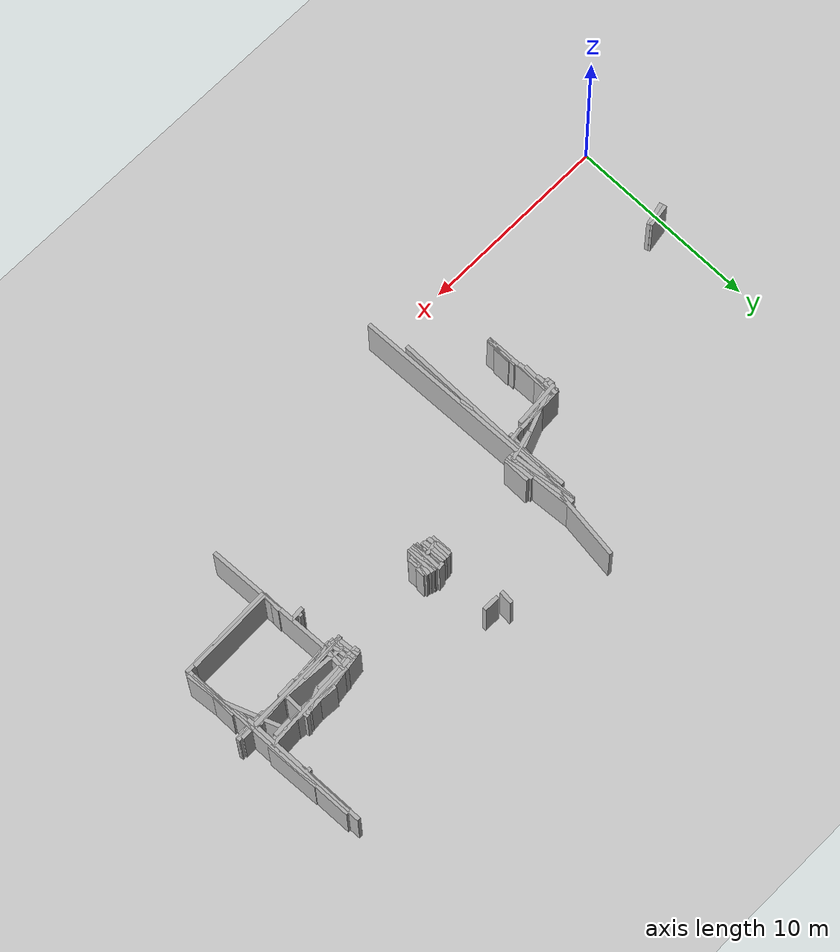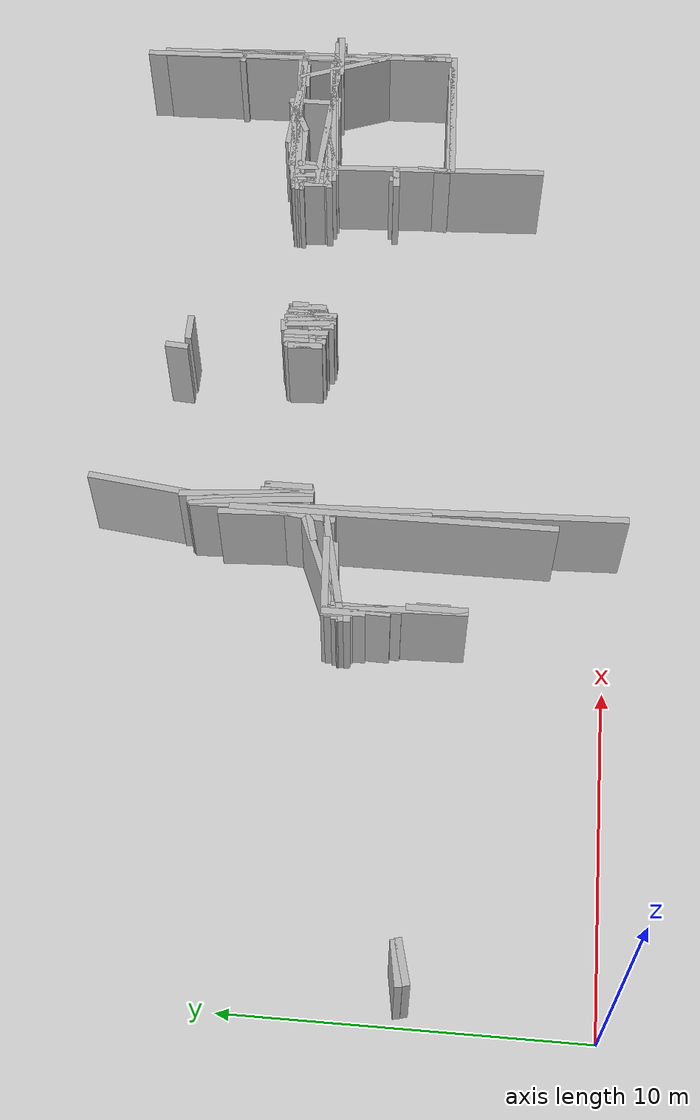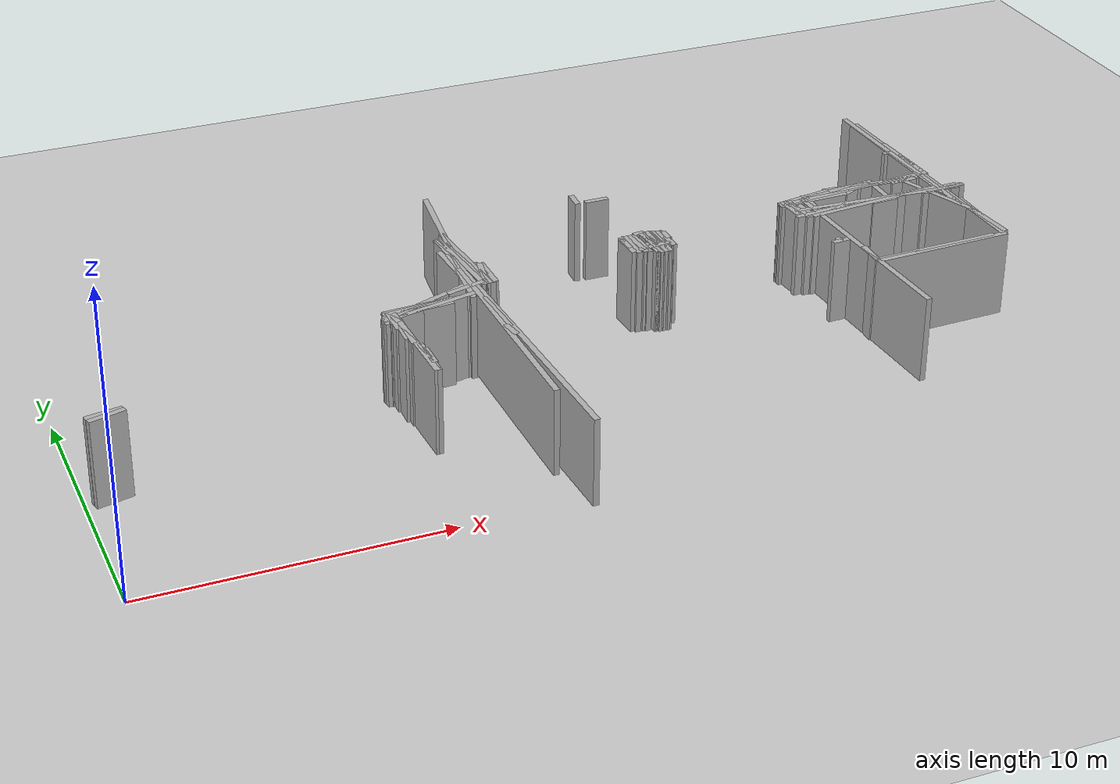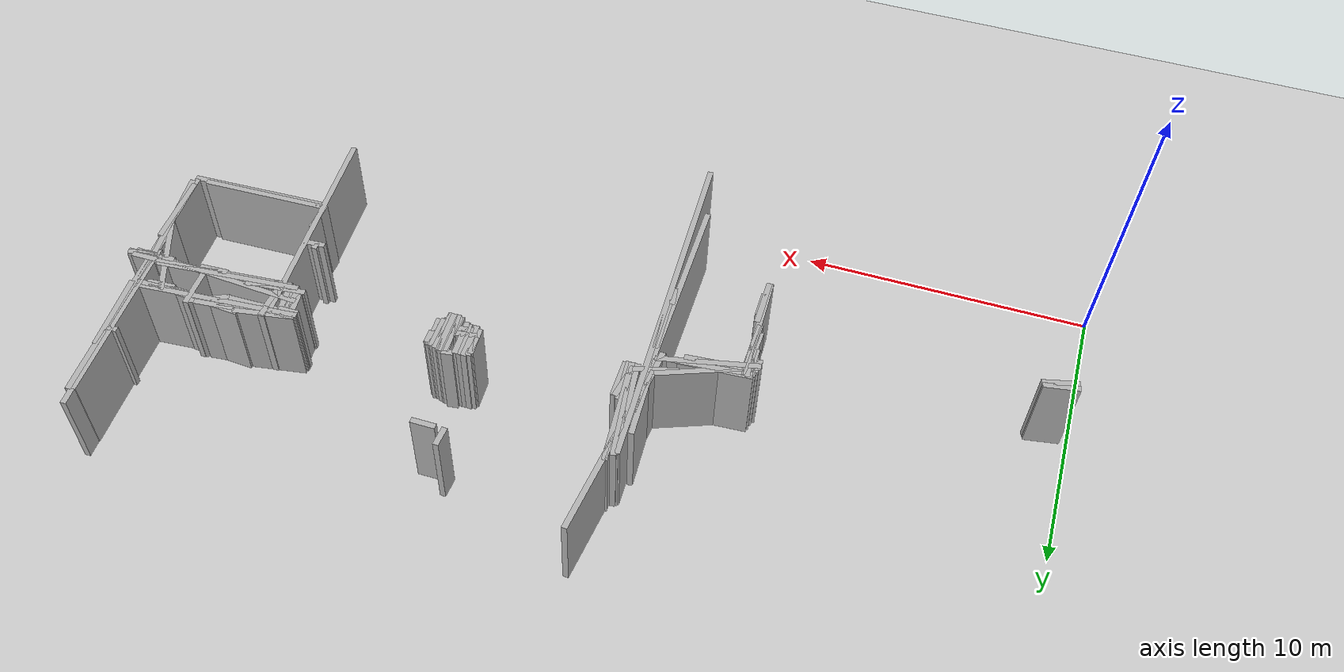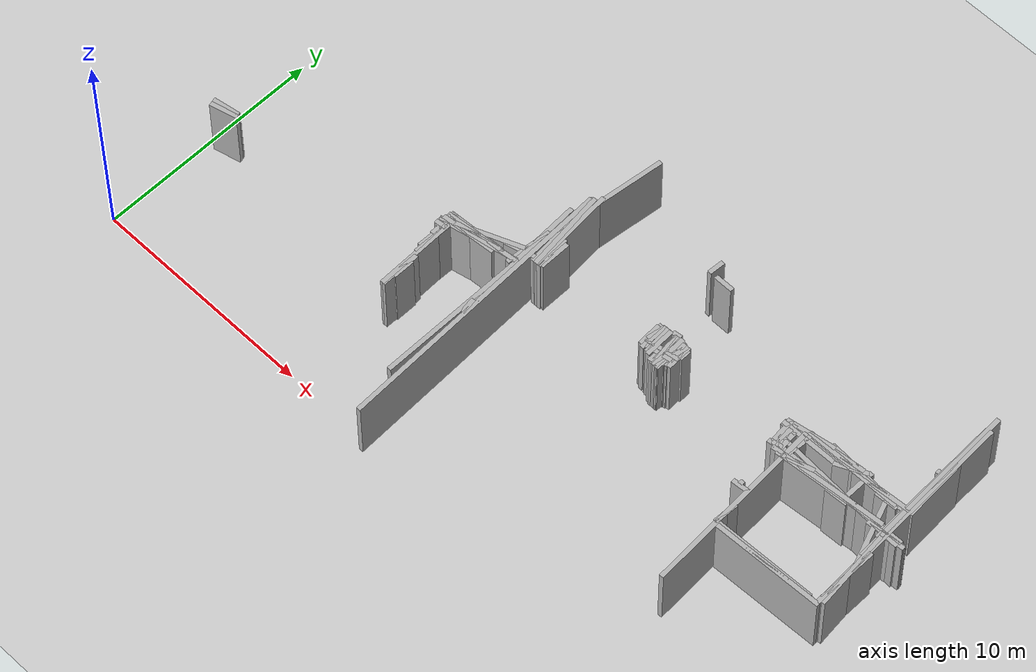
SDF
<sdf version="1.6">
 <world name="aboureyhan">
  <model name="ground_plane">
   <static>true</static>
   <link name="link">
    <collision name="collision">
     <geometry><plane><normal>0 0 1</normal><size>100 100</size></plane></geometry>
    </collision>
    <visual name="visual">
     <geometry><plane><normal>0 0 1</normal><size>500 500</size></plane></geometry>
     <material>
      <ambient>0.8 0.8 0.8 1</ambient>
      <diffuse>0.8 0.8 0.8 1</diffuse>
      <specular>0.8 0.8 0.8 1</specular>
     </material>
    </visual>
   </link>
  </model>
  <model name="wall_2">
   <static>true</static>
   <pose>13.925000000000002 5.925000000000001 1.5 0 0 -1.5352381981834389</pose>
   <link name="link">
    <collision name="collision">
     <geometry><box><size>12.658001422025514 0.2 3.0</size></box></geometry>
    </collision>
    <visual name="visual">
     <geometry><box><size>12.658001422025514 0.2 3.0</size></box></geometry>
     <material><ambient>0.5 0.5 0.5 1</ambient><diffuse>0.7 0.7 0.7 1</diffuse></material>
    </visual>
   </link>
  </model>
  <model name="wall_62">
   <static>true</static>
   <pose>19.475 9.475000000000001 1.5 0 0 -1.5232132235179159</pose>
   <link name="link">
    <collision name="collision"><geometry><box><size>1.051189802081429 0.2 3.0</size></box></geometry></collision>
    <visual name="visual">
     <geometry><box><size>1.051189802081429 0.2 3.0</size></box></geometry>
     <material><ambient>0.5 0.5 0.5 1</ambient><diffuse>0.7 0.7 0.7 1</diffuse></material>
    </visual>
   </link>
  </model>
  <model name="wall_72">
   <static>true</static>
   <pose>21.0 9.75 1.5 0 0 -1.5707963267948966</pose>
   <link name="link">
    <collision name="collision"><geometry><box><size>0.5 0.2 3.0</size></box></geometry></collision>
    <visual name="visual">
     <geometry><box><size>0.5 0.2 3.0</size></box></geometry>
     <material><ambient>0.5 0.5 0.5 1</ambient><diffuse>0.7 0.7 0.7 1</diffuse></material>
    </visual>
   </link>
  </model>
  <model name="wall_73">
   <static>true</static>
   <pose>26.225 9.825 1.5 0 0 -1.460139105620997</pose>
   <link name="link">
    <collision name="collision">
     <geometry><box><size>1.3583077707206146 0.2 3.0</size></box></geometry>
    </collision>
    <visual name="visual">
     <geometry><box><size>1.3583077707206146 0.2 3.0</size></box></geometry>
     <material><ambient>0.5 0.5 0.5 1</ambient><diffuse>0.7 0.7 0.7 1</diffuse></material>
    </visual>
   </link>
  </model>
  <model name="wall_76">
   <static>true</static>
   <pose>19.85 9.5 1.5 0 0 -1.4940244355251173</pose>
   <link name="link">
    <collision name="collision"><geometry><box><size>1.303840481040527 0.2 3.0</size></box></geometry></collision>
    <visual name="visual">
     <geometry><box><size>1.303840481040527 0.2 3.0</size></box></geometry>
     <material><ambient>0.5 0.5 0.5 1</ambient><diffuse>0.7 0.7 0.7 1</diffuse></material>
    </visual>
   </link>
  </model>
  <model name="wall_77">
   <static>true</static>
   <pose>20.525 9.400000000000002 1.5 0 0 -1.539556493364628</pose>
   <link name="link">
    <collision name="collision">
     <geometry><box><size>1.6007810593582135 0.2 3.0</size></box></geometry>
    </collision>
    <visual name="visual">
     <geometry><box><size>1.6007810593582135 0.2 3.0</size></box></geometry>
     <material><ambient>0.5 0.5 0.5 1</ambient><diffuse>0.7 0.7 0.7 1</diffuse></material>
    </visual>
   </link>
  </model>
  <model name="wall_89">
   <static>true</static>
   <pose>20.925000000000004 9.525000000000002 1.5 0 0 -1.5273454314033652</pose>
   <link name="link">
    <collision name="collision">
     <geometry><box><size>1.1510864433221324 0.2 3.0</size></box></geometry>
    </collision>
    <visual name="visual">
     <geometry><box><size>1.1510864433221324 0.2 3.0</size></box></geometry>
     <material><ambient>0.5 0.5 0.5 1</ambient><diffuse>0.7 0.7 0.7 1</diffuse></material>
    </visual>
   </link>
  </model>
  <model name="wall_94">
   <static>true</static>
   <pose>28.975 5.574999999999999 1.5 0 0 0.03295509761429783</pose>
   <link name="link">
    <collision name="collision">
     <geometry><box><size>4.5524718560360125 0.2 3.0</size></box></geometry>
    </collision>
    <visual name="visual">
     <geometry><box><size>4.5524718560360125 0.2 3.0</size></box></geometry>
     <material><ambient>0.5 0.5 0.5 1</ambient><diffuse>0.7 0.7 0.7 1</diffuse></material>
    </visual>
   </link>
  </model>
  <model name="wall_95">
   <static>true</static>
   <pose>31.250000000000004 12.024999999999999 1.5 0 0 -1.5321059667094026</pose>
   <link name="link">
    <collision name="collision"><geometry><box><size>7.755804278087477 0.2 3.0</size></box></geometry></collision>
    <visual name="visual">
     <geometry><box><size>7.755804278087477 0.2 3.0</size></box></geometry>
     <material><ambient>0.5 0.5 0.5 1</ambient><diffuse>0.7 0.7 0.7 1</diffuse></material>
    </visual>
   </link>
  </model>
  <model name="wall_109">
   <static>true</static>
   <pose>13.700000000000003 6.350000000000001 1.5 0 0 1.5707963267948966</pose>
   <link name="link">
    <collision name="collision"><geometry><box><size>9.5 0.2 3.0</size></box></geometry></collision>
    <visual name="visual">
     <geometry><box><size>9.5 0.2 3.0</size></box></geometry>
     <material><ambient>0.5 0.5 0.5 1</ambient><diffuse>0.7 0.7 0.7 1</diffuse></material>
    </visual>
   </link>
  </model>
  <model name="wall_113">
   <static>true</static>
   <pose>20.3 9.399999999999999 1.5 0 0 -1.5707963267948966</pose>
   <link name="link">
    <collision name="collision"><geometry><box><size>1.5 0.2 3.0</size></box></geometry></collision>
    <visual name="visual">
     <geometry><box><size>1.5 0.2 3.0</size></box></geometry>
     <material><ambient>0.5 0.5 0.5 1</ambient><diffuse>0.7 0.7 0.7 1</diffuse></material>
    </visual>
   </link>
  </model>
  <model name="wall_114">
   <static>true</static>
   <pose>19.975 9.474999999999998 1.5 0 0 -1.5337762109209687</pose>
   <link name="link">
    <collision name="collision"><geometry><box><size>1.350925608610631 0.2 3.0</size></box></geometry></collision>
    <visual name="visual">
     <geometry><box><size>1.350925608610631 0.2 3.0</size></box></geometry>
     <material><ambient>0.5 0.5 0.5 1</ambient><diffuse>0.7 0.7 0.7 1</diffuse></material>
    </visual>
   </link>
  </model>
  <model name="wall_135">
   <static>true</static>
   <pose>10.625000000000002 7.125 1.5 0 0 1.5437758776076314</pose>
   <link name="link">
    <collision name="collision"><geometry><box><size>1.850675552332169 0.2 3.0</size></box></geometry></collision>
    <visual name="visual">
     <geometry><box><size>1.850675552332169 0.2 3.0</size></box></geometry>
     <material><ambient>0.5 0.5 0.5 1</ambient><diffuse>0.7 0.7 0.7 1</diffuse></material>
    </visual>
   </link>
  </model>
  <model name="wall_146">
   <static>true</static>
   <pose>28.475000000000005 10.524999999999999 1.5 0 0 0.0767718912697785</pose>
   <link name="link">
    <collision name="collision"><geometry><box><size>5.867282164682385 0.2 3.0</size></box></geometry></collision>
    <visual name="visual">
     <geometry><box><size>5.867282164682385 0.2 3.0</size></box></geometry>
     <material><ambient>0.5 0.5 0.5 1</ambient><diffuse>0.7 0.7 0.7 1</diffuse></material>
    </visual>
   </link>
  </model>
  <model name="wall_152">
   <static>true</static>
   <pose>31.425 10.5 1.5 0 0 -1.534729499478717</pose>
   <link name="link">
    <collision name="collision"><geometry><box><size>9.706312379065494 0.2 3.0</size></box></geometry></collision>
    <visual name="visual">
     <geometry><box><size>9.706312379065494 0.2 3.0</size></box></geometry>
     <material><ambient>0.5 0.5 0.5 1</ambient><diffuse>0.7 0.7 0.7 1</diffuse></material>
    </visual>
   </link>
  </model>
  <model name="wall_171">
   <static>true</static>
   <pose>28.55 9.425 1.5 0 0 0.08800737352773992</pose>
   <link name="link">
    <collision name="collision"><geometry><box><size>5.119814449762805 0.2 3.0</size></box></geometry></collision>
    <visual name="visual">
     <geometry><box><size>5.119814449762805 0.2 3.0</size></box></geometry>
     <material><ambient>0.5 0.5 0.5 1</ambient><diffuse>0.7 0.7 0.7 1</diffuse></material>
    </visual>
   </link>
  </model>
  <model name="wall_195">
   <static>true</static>
   <pose>29.200000000000003 5.5 1.5 0 0 0.039978687123290606</pose>
   <link name="link">
    <collision name="collision">
     <geometry><box><size>5.0039984012787215 0.2 3.0</size></box></geometry>
    </collision>
    <visual name="visual">
     <geometry><box><size>5.0039984012787215 0.2 3.0</size></box></geometry>
     <material><ambient>0.5 0.5 0.5 1</ambient><diffuse>0.7 0.7 0.7 1</diffuse></material>
    </visual>
   </link>
  </model>
  <model name="wall_202">
   <static>true</static>
   <pose>11.950000000000001 7.924999999999997 1.5 0 0 0.21711131473490505</pose>
   <link name="link">
    <collision name="collision"><geometry><box><size>3.481738071710739 0.2 3.0</size></box></geometry></collision>
    <visual name="visual">
     <geometry><box><size>3.481738071710739 0.2 3.0</size></box></geometry>
     <material><ambient>0.5 0.5 0.5 1</ambient><diffuse>0.7 0.7 0.7 1</diffuse></material>
    </visual>
   </link>
  </model>
  <model name="wall_204">
   <static>true</static>
   <pose>19.650000000000002 9.5 1.5 0 0 1.5707963267948966</pose>
   <link name="link">
    <collision name="collision">
     <geometry><box><size>1.2999999999999972 0.2 3.0</size></box></geometry>
    </collision>
    <visual name="visual">
     <geometry><box><size>1.2999999999999972 0.2 3.0</size></box></geometry>
     <material><ambient>0.5 0.5 0.5 1</ambient><diffuse>0.7 0.7 0.7 1</diffuse></material>
    </visual>
   </link>
  </model>
  <model name="wall_212">
   <static>true</static>
   <pose>12.000000000000002 8.100000000000001 1.5 0 0 0.09065988720074424</pose>
   <link name="link">
    <collision name="collision">
     <geometry><box><size>3.3136083051561784 0.2 3.0</size></box></geometry>
    </collision>
    <visual name="visual">
     <geometry><box><size>3.3136083051561784 0.2 3.0</size></box></geometry>
     <material><ambient>0.5 0.5 0.5 1</ambient><diffuse>0.7 0.7 0.7 1</diffuse></material>
    </visual>
   </link>
  </model>
  <model name="wall_234">
   <static>true</static>
   <pose>26.7 6.475000000000001 1.5 0 0 -1.5211477204062904</pose>
   <link name="link">
    <collision name="collision"><geometry><box><size>8.059931761497733 0.2 3.0</size></box></geometry></collision>
    <visual name="visual">
     <geometry><box><size>8.059931761497733 0.2 3.0</size></box></geometry>
     <material><ambient>0.5 0.5 0.5 1</ambient><diffuse>0.7 0.7 0.7 1</diffuse></material>
    </visual>
   </link>
  </model>
  <model name="wall_263">
   <static>true</static>
   <pose>29.35 10.25 1.5 0 0 1.5707963267948966</pose>
   <link name="link">
    <collision name="collision">
     <geometry><box><size>1.4000000000000057 0.2 3.0</size></box></geometry>
    </collision>
    <visual name="visual">
     <geometry><box><size>1.4000000000000057 0.2 3.0</size></box></geometry>
     <material><ambient>0.5 0.5 0.5 1</ambient><diffuse>0.7 0.7 0.7 1</diffuse></material>
    </visual>
   </link>
  </model>
  <model name="wall_280">
   <static>true</static>
   <pose>20.650000000000002 9.375 1.5 0 0 1.5707963267948966</pose>
   <link name="link">
    <collision name="collision">
     <geometry><box><size>1.5499999999999972 0.2 3.0</size></box></geometry>
    </collision>
    <visual name="visual">
     <geometry><box><size>1.5499999999999972 0.2 3.0</size></box></geometry>
     <material><ambient>0.5 0.5 0.5 1</ambient><diffuse>0.7 0.7 0.7 1</diffuse></material>
    </visual>
   </link>
  </model>
  <model name="wall_286">
   <static>true</static>
   <pose>25.975 9.875 1.5 0 0 1.5308176396716089</pose>
   <link name="link">
    <collision name="collision">
     <geometry><box><size>1.2509996003196802 0.2 3.0</size></box></geometry>
    </collision>
    <visual name="visual">
     <geometry><box><size>1.2509996003196802 0.2 3.0</size></box></geometry>
     <material><ambient>0.5 0.5 0.5 1</ambient><diffuse>0.7 0.7 0.7 1</diffuse></material>
    </visual>
   </link>
  </model>
  <model name="wall_287">
   <static>true</static>
   <pose>14.5 9.45 1.5 0 0 1.5707963267948966</pose>
   <link name="link">
    <collision name="collision">
     <geometry><box><size>1.3999999999999986 0.2 3.0</size></box></geometry>
    </collision>
    <visual name="visual">
     <geometry><box><size>1.3999999999999986 0.2 3.0</size></box></geometry>
     <material><ambient>0.5 0.5 0.5 1</ambient><diffuse>0.7 0.7 0.7 1</diffuse></material>
    </visual>
   </link>
  </model>
  <model name="wall_293">
   <static>true</static>
   <pose>13.925 10.5 1.5 0 0 -1.473878699000533</pose>
   <link name="link">
    <collision name="collision">
     <geometry><box><size>3.6169738732813594 0.2 3.0</size></box></geometry>
    </collision>
    <visual name="visual">
     <geometry><box><size>3.6169738732813594 0.2 3.0</size></box></geometry>
     <material><ambient>0.5 0.5 0.5 1</ambient><diffuse>0.7 0.7 0.7 1</diffuse></material>
    </visual>
   </link>
  </model>
  <model name="wall_305">
   <static>true</static>
   <pose>20.325000000000003 9.375 1.5 0 0 -1.4743225516123082</pose>
   <link name="link">
    <collision name="collision"><geometry><box><size>1.557241150239741 0.2 3.0</size></box></geometry></collision>
    <visual name="visual">
     <geometry><box><size>1.557241150239741 0.2 3.0</size></box></geometry>
     <material><ambient>0.5 0.5 0.5 1</ambient><diffuse>0.7 0.7 0.7 1</diffuse></material>
    </visual>
   </link>
  </model>
  <model name="wall_307">
   <static>true</static>
   <pose>20.8 9.5 1.5 0 0 1.5707963267948966</pose>
   <link name="link">
    <collision name="collision">
     <geometry><box><size>1.2000000000000028 0.2 3.0</size></box></geometry>
    </collision>
    <visual name="visual">
     <geometry><box><size>1.2000000000000028 0.2 3.0</size></box></geometry>
     <material><ambient>0.5 0.5 0.5 1</ambient><diffuse>0.7 0.7 0.7 1</diffuse></material>
    </visual>
   </link>
  </model>
  <model name="wall_316">
   <static>true</static>
   <pose>20.475 9.400000000000002 1.5 0 0 -1.5395564933646302</pose>
   <link name="link">
    <collision name="collision">
     <geometry><box><size>1.6007810593582135 0.2 3.0</size></box></geometry>
    </collision>
    <visual name="visual">
     <geometry><box><size>1.6007810593582135 0.2 3.0</size></box></geometry>
     <material><ambient>0.5 0.5 0.5 1</ambient><diffuse>0.7 0.7 0.7 1</diffuse></material>
    </visual>
   </link>
  </model>
  <model name="wall_321">
   <static>true</static>
   <pose>30.975 9.200000000000003 1.5 0 0 -1.2047398109474767</pose>
   <link name="link">
    <collision name="collision"><geometry><box><size>3.212864765283471 0.2 3.0</size></box></geometry></collision>
    <visual name="visual">
     <geometry><box><size>3.212864765283471 0.2 3.0</size></box></geometry>
     <material><ambient>0.5 0.5 0.5 1</ambient><diffuse>0.7 0.7 0.7 1</diffuse></material>
    </visual>
   </link>
  </model>
  <model name="wall_359">
   <static>true</static>
   <pose>28.775000000000002 9.375 1.5 0 0 0.08887417481310834</pose>
   <link name="link">
    <collision name="collision"><geometry><box><size>5.070009861923352 0.2 3.0</size></box></geometry></collision>
    <visual name="visual">
     <geometry><box><size>5.070009861923352 0.2 3.0</size></box></geometry>
     <material><ambient>0.5 0.5 0.5 1</ambient><diffuse>0.7 0.7 0.7 1</diffuse></material>
    </visual>
   </link>
  </model>
  <model name="wall_378">
   <static>true</static>
   <pose>28.725000000000005 10.549999999999997 1.5 0 0 0.0</pose>
   <link name="link">
    <collision name="collision"><geometry><box><size>4.350000000000001 0.2 3.0</size></box></geometry></collision>
    <visual name="visual">
     <geometry><box><size>4.350000000000001 0.2 3.0</size></box></geometry>
     <material><ambient>0.5 0.5 0.5 1</ambient><diffuse>0.7 0.7 0.7 1</diffuse></material>
    </visual>
   </link>
  </model>
  <model name="wall_386">
   <static>true</static>
   <pose>14.025 10.525000000000002 1.5 0 0 -1.44812767129044</pose>
   <link name="link">
    <collision name="collision">
     <geometry><box><size>3.6776351096866566 0.2 3.0</size></box></geometry>
    </collision>
    <visual name="visual">
     <geometry><box><size>3.6776351096866566 0.2 3.0</size></box></geometry>
     <material><ambient>0.5 0.5 0.5 1</ambient><diffuse>0.7 0.7 0.7 1</diffuse></material>
    </visual>
   </link>
  </model>
  <model name="wall_389">
   <static>true</static>
   <pose>10.65 7.725000000000001 1.5 0 0 -1.4382447944982253</pose>
   <link name="link">
    <collision name="collision">
     <geometry><box><size>0.7566372975210776 0.2 3.0</size></box></geometry>
    </collision>
    <visual name="visual">
     <geometry><box><size>0.7566372975210776 0.2 3.0</size></box></geometry>
     <material><ambient>0.5 0.5 0.5 1</ambient><diffuse>0.7 0.7 0.7 1</diffuse></material>
    </visual>
   </link>
  </model>
  <model name="wall_397">
   <static>true</static>
   <pose>31.200000000000003 12.2 1.5 0 0 -1.5385494443596421</pose>
   <link name="link">
    <collision name="collision"><geometry><box><size>6.203224967708325 0.2 3.0</size></box></geometry></collision>
    <visual name="visual">
     <geometry><box><size>6.203224967708325 0.2 3.0</size></box></geometry>
     <material><ambient>0.5 0.5 0.5 1</ambient><diffuse>0.7 0.7 0.7 1</diffuse></material>
    </visual>
   </link>
  </model>
  <model name="wall_403">
   <static>true</static>
   <pose>31.425 12.05 1.5 0 0 -1.517276058335582</pose>
   <link name="link">
    <collision name="collision">
     <geometry><box><size>2.8040149785619946 0.2 3.0</size></box></geometry>
    </collision>
    <visual name="visual">
     <geometry><box><size>2.8040149785619946 0.2 3.0</size></box></geometry>
     <material><ambient>0.5 0.5 0.5 1</ambient><diffuse>0.7 0.7 0.7 1</diffuse></material>
    </visual>
   </link>
  </model>
  <model name="wall_425">
   <static>true</static>
   <pose>10.55 7.524999999999999 1.5 0 0 -1.5707963267948966</pose>
   <link name="link">
    <collision name="collision"><geometry><box><size>1.25 0.2 3.0</size></box></geometry></collision>
    <visual name="visual">
     <geometry><box><size>1.25 0.2 3.0</size></box></geometry>
     <material><ambient>0.5 0.5 0.5 1</ambient><diffuse>0.7 0.7 0.7 1</diffuse></material>
    </visual>
   </link>
  </model>
  <model name="wall_436">
   <static>true</static>
   <pose>13.575000000000001 9.875 1.5 0 0 -1.5216555923788757</pose>
   <link name="link">
    <collision name="collision"><geometry><box><size>3.053686296920491 0.2 3.0</size></box></geometry></collision>
    <visual name="visual">
     <geometry><box><size>3.053686296920491 0.2 3.0</size></box></geometry>
     <material><ambient>0.5 0.5 0.5 1</ambient><diffuse>0.7 0.7 0.7 1</diffuse></material>
    </visual>
   </link>
  </model>
  <model name="wall_455">
   <static>true</static>
   <pose>28.950000000000003 9.55 1.5 0 0 -0.06442683942555329</pose>
   <link name="link">
    <collision name="collision"><geometry><box><size>6.212889826803629 0.2 3.0</size></box></geometry></collision>
    <visual name="visual">
     <geometry><box><size>6.212889826803629 0.2 3.0</size></box></geometry>
     <material><ambient>0.5 0.5 0.5 1</ambient><diffuse>0.7 0.7 0.7 1</diffuse></material>
    </visual>
   </link>
  </model>
  <model name="wall_505">
   <static>true</static>
   <pose>20.25 8.849999999999998 1.5 0 0 1.5707963267948966</pose>
   <link name="link">
    <collision name="collision">
     <geometry><box><size>0.3999999999999986 0.2 3.0</size></box></geometry>
    </collision>
    <visual name="visual">
     <geometry><box><size>0.3999999999999986 0.2 3.0</size></box></geometry>
     <material><ambient>0.5 0.5 0.5 1</ambient><diffuse>0.7 0.7 0.7 1</diffuse></material>
    </visual>
   </link>
  </model>
  <model name="wall_506">
   <static>true</static>
   <pose>26.85 10.274999999999999 1.5 0 0 0.019228399099706157</pose>
   <link name="link">
    <collision name="collision"><geometry><box><size>2.600480724789163 0.2 3.0</size></box></geometry></collision>
    <visual name="visual">
     <geometry><box><size>2.600480724789163 0.2 3.0</size></box></geometry>
     <material><ambient>0.5 0.5 0.5 1</ambient><diffuse>0.7 0.7 0.7 1</diffuse></material>
    </visual>
   </link>
  </model>
  <model name="wall_552">
   <static>true</static>
   <pose>10.5 7.425000000000001 1.5 0 0 0.09966865249117048</pose>
   <link name="link">
    <collision name="collision">
     <geometry><box><size>0.5024937810560449 0.2 3.0</size></box></geometry>
    </collision>
    <visual name="visual">
     <geometry><box><size>0.5024937810560449 0.2 3.0</size></box></geometry>
     <material><ambient>0.5 0.5 0.5 1</ambient><diffuse>0.7 0.7 0.7 1</diffuse></material>
    </visual>
   </link>
  </model>
  <model name="wall_564">
   <static>true</static>
   <pose>26.25 7.25 1.5 0 0 1.5707963267948966</pose>
   <link name="link">
    <collision name="collision">
     <geometry><box><size>0.29999999999999716 0.2 3.0</size></box></geometry>
    </collision>
    <visual name="visual">
     <geometry><box><size>0.29999999999999716 0.2 3.0</size></box></geometry>
     <material><ambient>0.5 0.5 0.5 1</ambient><diffuse>0.7 0.7 0.7 1</diffuse></material>
    </visual>
   </link>
  </model>
  <model name="wall_578">
   <static>true</static>
   <pose>14.325000000000003 9.5 1.5 0 0 1.3808080388761805</pose>
   <link name="link">
    <collision name="collision">
     <geometry><box><size>1.3238202294873698 0.2 3.0</size></box></geometry>
    </collision>
    <visual name="visual">
     <geometry><box><size>1.3238202294873698 0.2 3.0</size></box></geometry>
     <material><ambient>0.5 0.5 0.5 1</ambient><diffuse>0.7 0.7 0.7 1</diffuse></material>
    </visual>
   </link>
  </model>
  <model name="wall_586">
   <static>true</static>
   <pose>28.925 9.474999999999998 1.5 0 0 0.023617655004950295</pose>
   <link name="link">
    <collision name="collision"><geometry><box><size>6.351771406466075 0.2 3.0</size></box></geometry></collision>
    <visual name="visual">
     <geometry><box><size>6.351771406466075 0.2 3.0</size></box></geometry>
     <material><ambient>0.5 0.5 0.5 1</ambient><diffuse>0.7 0.7 0.7 1</diffuse></material>
    </visual>
   </link>
  </model>
  <model name="wall_595">
   <static>true</static>
   <pose>13.8 5.600000000000001 1.5 0 0 -1.4288992721907312</pose>
   <link name="link">
    <collision name="collision">
     <geometry><box><size>0.7071067811865505 0.2 3.0</size></box></geometry>
    </collision>
    <visual name="visual">
     <geometry><box><size>0.7071067811865505 0.2 3.0</size></box></geometry>
     <material><ambient>0.5 0.5 0.5 1</ambient><diffuse>0.7 0.7 0.7 1</diffuse></material>
    </visual>
   </link>
  </model>
  <model name="wall_596">
   <static>true</static>
   <pose>31.6 7.199999999999999 1.5 0 0 1.5707963267948966</pose>
   <link name="link">
    <collision name="collision">
     <geometry><box><size>2.6000000000000014 0.2 3.0</size></box></geometry>
    </collision>
    <visual name="visual">
     <geometry><box><size>2.6000000000000014 0.2 3.0</size></box></geometry>
     <material><ambient>0.5 0.5 0.5 1</ambient><diffuse>0.7 0.7 0.7 1</diffuse></material>
    </visual>
   </link>
  </model>
  <model name="wall_598">
   <static>true</static>
   <pose>28.675000000000004 10.55 1.5 0 0 0.4475199751571708</pose>
   <link name="link">
    <collision name="collision">
     <geometry><box><size>1.3865424623862053 0.2 3.0</size></box></geometry>
    </collision>
    <visual name="visual">
     <geometry><box><size>1.3865424623862053 0.2 3.0</size></box></geometry>
     <material><ambient>0.5 0.5 0.5 1</ambient><diffuse>0.7 0.7 0.7 1</diffuse></material>
    </visual>
   </link>
  </model>
  <model name="wall_619">
   <static>true</static>
   <pose>31.850000000000005 9.399999999999999 1.5 0 0 0.2186689458739453</pose>
   <link name="link">
    <collision name="collision"><geometry><box><size>0.921954445729288 0.2 3.0</size></box></geometry></collision>
    <visual name="visual">
     <geometry><box><size>0.921954445729288 0.2 3.0</size></box></geometry>
     <material><ambient>0.5 0.5 0.5 1</ambient><diffuse>0.7 0.7 0.7 1</diffuse></material>
    </visual>
   </link>
  </model>
  <model name="wall_630">
   <static>true</static>
   <pose>13.5 8.75 1.5 0 0 0.2606023917473445</pose>
   <link name="link">
    <collision name="collision">
     <geometry><box><size>1.5524174696260038 0.2 3.0</size></box></geometry>
    </collision>
    <visual name="visual">
     <geometry><box><size>1.5524174696260038 0.2 3.0</size></box></geometry>
     <material><ambient>0.5 0.5 0.5 1</ambient><diffuse>0.7 0.7 0.7 1</diffuse></material>
    </visual>
   </link>
  </model>
  <model name="wall_636">
   <static>true</static>
   <pose>20.725 9.350000000000001 1.5 0 0 1.4056476493802699</pose>
   <link name="link">
    <collision name="collision">
     <geometry><box><size>1.5206906325745548 0.2 3.0</size></box></geometry>
    </collision>
    <visual name="visual">
     <geometry><box><size>1.5206906325745548 0.2 3.0</size></box></geometry>
     <material><ambient>0.5 0.5 0.5 1</ambient><diffuse>0.7 0.7 0.7 1</diffuse></material>
    </visual>
   </link>
  </model>
  <model name="wall_639">
   <static>true</static>
   <pose>10.75 6.049999999999997 1.5 0 0 -1.545801533175976</pose>
   <link name="link">
    <collision name="collision"><geometry><box><size>4.001249804748512 0.2 3.0</size></box></geometry></collision>
    <visual name="visual">
     <geometry><box><size>4.001249804748512 0.2 3.0</size></box></geometry>
     <material><ambient>0.5 0.5 0.5 1</ambient><diffuse>0.7 0.7 0.7 1</diffuse></material>
    </visual>
   </link>
  </model>
  <model name="wall_646">
   <static>true</static>
   <pose>10.900000000000002 5.024999999999999 1.5 0 0 1.5707963267948966</pose>
   <link name="link">
    <collision name="collision">
     <geometry><box><size>0.9500000000000028 0.2 3.0</size></box></geometry>
    </collision>
    <visual name="visual">
     <geometry><box><size>0.9500000000000028 0.2 3.0</size></box></geometry>
     <material><ambient>0.5 0.5 0.5 1</ambient><diffuse>0.7 0.7 0.7 1</diffuse></material>
    </visual>
   </link>
  </model>
  <model name="wall_649">
   <static>true</static>
   <pose>26.025 9.850000000000001 1.5 0 0 -1.3808080388761805</pose>
   <link name="link">
    <collision name="collision">
     <geometry><box><size>1.3238202294873698 0.2 3.0</size></box></geometry>
    </collision>
    <visual name="visual">
     <geometry><box><size>1.3238202294873698 0.2 3.0</size></box></geometry>
     <material><ambient>0.5 0.5 0.5 1</ambient><diffuse>0.7 0.7 0.7 1</diffuse></material>
    </visual>
   </link>
  </model>
  <model name="wall_652">
   <static>true</static>
   <pose>28.950000000000003 10.600000000000001 1.5 0 0 0.0</pose>
   <link name="link">
    <collision name="collision"><geometry><box><size>4.799999999999997 0.2 3.0</size></box></geometry></collision>
    <visual name="visual">
     <geometry><box><size>4.799999999999997 0.2 3.0</size></box></geometry>
     <material><ambient>0.5 0.5 0.5 1</ambient><diffuse>0.7 0.7 0.7 1</diffuse></material>
    </visual>
   </link>
  </model>
  <model name="wall_658">
   <static>true</static>
   <pose>0.9000000000000004 5.199999999999999 1.5 0 0 0.24497866312686764</pose>
   <link name="link">
    <collision name="collision">
     <geometry><box><size>1.2369316876852985 0.2 3.0</size></box></geometry>
    </collision>
    <visual name="visual">
     <geometry><box><size>1.2369316876852985 0.2 3.0</size></box></geometry>
     <material><ambient>0.5 0.5 0.5 1</ambient><diffuse>0.7 0.7 0.7 1</diffuse></material>
    </visual>
   </link>
  </model>
  <model name="wall_668">
   <static>true</static>
   <pose>20.300000000000004 9.149999999999999 1.5 0 0 0.16514867741462924</pose>
   <link name="link">
    <collision name="collision">
     <geometry><box><size>1.2165525060596438 0.2 3.0</size></box></geometry>
    </collision>
    <visual name="visual">
     <geometry><box><size>1.2165525060596438 0.2 3.0</size></box></geometry>
     <material><ambient>0.5 0.5 0.5 1</ambient><diffuse>0.7 0.7 0.7 1</diffuse></material>
    </visual>
   </link>
  </model>
  <model name="wall_675">
   <static>true</static>
   <pose>20.700000000000003 9.475000000000001 1.5 0 0 -1.5707963267948966</pose>
   <link name="link">
    <collision name="collision"><geometry><box><size>1.25 0.2 3.0</size></box></geometry></collision>
    <visual name="visual">
     <geometry><box><size>1.25 0.2 3.0</size></box></geometry>
     <material><ambient>0.5 0.5 0.5 1</ambient><diffuse>0.7 0.7 0.7 1</diffuse></material>
    </visual>
   </link>
  </model>
  <model name="wall_692">
   <static>true</static>
   <pose>13.550000000000002 9.024999999999999 1.5 0 0 1.4735431285433311</pose>
   <link name="link">
    <collision name="collision">
     <geometry><box><size>2.0597329924045953 0.2 3.0</size></box></geometry>
    </collision>
    <visual name="visual">
     <geometry><box><size>2.0597329924045953 0.2 3.0</size></box></geometry>
     <material><ambient>0.5 0.5 0.5 1</ambient><diffuse>0.7 0.7 0.7 1</diffuse></material>
    </visual>
   </link>
  </model>
  <model name="wall_724">
   <static>true</static>
   <pose>14.350000000000001 9.475000000000001 1.5 0 0 -1.506369487369342</pose>
   <link name="link">
    <collision name="collision">
     <geometry><box><size>1.5532224567009039 0.2 3.0</size></box></geometry>
    </collision>
    <visual name="visual">
     <geometry><box><size>1.5532224567009039 0.2 3.0</size></box></geometry>
     <material><ambient>0.5 0.5 0.5 1</ambient><diffuse>0.7 0.7 0.7 1</diffuse></material>
    </visual>
   </link>
  </model>
  <model name="wall_742">
   <static>true</static>
   <pose>26.650000000000002 10.575 1.5 0 0 0.16514867741462738</pose>
   <link name="link">
    <collision name="collision"><geometry><box><size>2.128966885604379 0.2 3.0</size></box></geometry></collision>
    <visual name="visual">
     <geometry><box><size>2.128966885604379 0.2 3.0</size></box></geometry>
     <material><ambient>0.5 0.5 0.5 1</ambient><diffuse>0.7 0.7 0.7 1</diffuse></material>
    </visual>
   </link>
  </model>
  <model name="wall_743">
   <static>true</static>
   <pose>26.975 9.424999999999997 1.5 0 0 0.09772690735871883</pose>
   <link name="link">
    <collision name="collision">
     <geometry><box><size>2.5622255950637887 0.2 3.0</size></box></geometry>
    </collision>
    <visual name="visual">
     <geometry><box><size>2.5622255950637887 0.2 3.0</size></box></geometry>
     <material><ambient>0.5 0.5 0.5 1</ambient><diffuse>0.7 0.7 0.7 1</diffuse></material>
    </visual>
   </link>
  </model>
  <model name="wall_749">
   <static>true</static>
   <pose>14.075000000000001 12.674999999999997 1.5 0 0 1.44761366465362</pose>
   <link name="link">
    <collision name="collision">
     <geometry><box><size>5.2900850654786264 0.2 3.0</size></box></geometry>
    </collision>
    <visual name="visual">
     <geometry><box><size>5.2900850654786264 0.2 3.0</size></box></geometry>
     <material><ambient>0.5 0.5 0.5 1</ambient><diffuse>0.7 0.7 0.7 1</diffuse></material>
    </visual>
   </link>
  </model>
  <model name="wall_773">
   <static>true</static>
   <pose>31.450000000000003 9.400000000000002 1.5 0 0 0.05875582271572343</pose>
   <link name="link">
    <collision name="collision">
     <geometry><box><size>1.7029386365926429 0.2 3.0</size></box></geometry>
    </collision>
    <visual name="visual">
     <geometry><box><size>1.7029386365926429 0.2 3.0</size></box></geometry>
     <material><ambient>0.5 0.5 0.5 1</ambient><diffuse>0.7 0.7 0.7 1</diffuse></material>
    </visual>
   </link>
  </model>
  <model name="wall_775">
   <static>true</static>
   <pose>14.15 10.650000000000002 1.5 0 0 -1.4940244355251184</pose>
   <link name="link">
    <collision name="collision"><geometry><box><size>3.911521443121588 0.2 3.0</size></box></geometry></collision>
    <visual name="visual">
     <geometry><box><size>3.911521443121588 0.2 3.0</size></box></geometry>
     <material><ambient>0.5 0.5 0.5 1</ambient><diffuse>0.7 0.7 0.7 1</diffuse></material>
    </visual>
   </link>
  </model>
  <model name="wall_776">
   <static>true</static>
   <pose>20.25 9.350000000000001 1.5 0 0 0.13255153229667588</pose>
   <link name="link">
    <collision name="collision"><geometry><box><size>1.513274595042156 0.2 3.0</size></box></geometry></collision>
    <visual name="visual">
     <geometry><box><size>1.513274595042156 0.2 3.0</size></box></geometry>
     <material><ambient>0.5 0.5 0.5 1</ambient><diffuse>0.7 0.7 0.7 1</diffuse></material>
    </visual>
   </link>
  </model>
  <model name="wall_777">
   <static>true</static>
   <pose>26.325000000000003 7.175000000000001 1.5 0 0 0.06656816377582947</pose>
   <link name="link">
    <collision name="collision">
     <geometry><box><size>0.7516648189186457 0.2 3.0</size></box></geometry>
    </collision>
    <visual name="visual">
     <geometry><box><size>0.7516648189186457 0.2 3.0</size></box></geometry>
     <material><ambient>0.5 0.5 0.5 1</ambient><diffuse>0.7 0.7 0.7 1</diffuse></material>
    </visual>
   </link>
  </model>
  <model name="wall_806">
   <static>true</static>
   <pose>20.200000000000003 10.175 1.5 0 0 0.12435499454677128</pose>
   <link name="link">
    <collision name="collision">
     <geometry><box><size>0.4031128874149301 0.2 3.0</size></box></geometry>
    </collision>
    <visual name="visual">
     <geometry><box><size>0.4031128874149301 0.2 3.0</size></box></geometry>
     <material><ambient>0.5 0.5 0.5 1</ambient><diffuse>0.7 0.7 0.7 1</diffuse></material>
    </visual>
   </link>
  </model>
  <model name="wall_807">
   <static>true</static>
   <pose>25.8 9.975000000000001 1.5 0 0 -1.4758446204521387</pose>
   <link name="link">
    <collision name="collision">
     <geometry><box><size>1.0547511554864466 0.2 3.0</size></box></geometry>
    </collision>
    <visual name="visual">
     <geometry><box><size>1.0547511554864466 0.2 3.0</size></box></geometry>
     <material><ambient>0.5 0.5 0.5 1</ambient><diffuse>0.7 0.7 0.7 1</diffuse></material>
    </visual>
   </link>
  </model>
  <model name="wall_808">
   <static>true</static>
   <pose>11.525 7.850000000000001 1.5 0 0 0.08145204430587215</pose>
   <link name="link">
    <collision name="collision">
     <geometry><box><size>2.4581497106563703 0.2 3.0</size></box></geometry>
    </collision>
    <visual name="visual">
     <geometry><box><size>2.4581497106563703 0.2 3.0</size></box></geometry>
     <material><ambient>0.5 0.5 0.5 1</ambient><diffuse>0.7 0.7 0.7 1</diffuse></material>
    </visual>
   </link>
  </model>
  <model name="wall_817">
   <static>true</static>
   <pose>29.1 9.325 1.5 0 0 0.04995839572194701</pose>
   <link name="link">
    <collision name="collision">
     <geometry><box><size>1.0012492197250396 0.2 3.0</size></box></geometry>
    </collision>
    <visual name="visual">
     <geometry><box><size>1.0012492197250396 0.2 3.0</size></box></geometry>
     <material><ambient>0.5 0.5 0.5 1</ambient><diffuse>0.7 0.7 0.7 1</diffuse></material>
    </visual>
   </link>
  </model>
  <model name="wall_827">
   <static>true</static>
   <pose>26.675 10.45 1.5 0 0 1.4464413322481242</pose>
   <link name="link">
    <collision name="collision">
     <geometry><box><size>0.40311288741492657 0.2 3.0</size></box></geometry>
    </collision>
    <visual name="visual">
     <geometry><box><size>0.40311288741492657 0.2 3.0</size></box></geometry>
     <material><ambient>0.5 0.5 0.5 1</ambient><diffuse>0.7 0.7 0.7 1</diffuse></material>
    </visual>
   </link>
  </model>
  <model name="wall_836">
   <static>true</static>
   <pose>26.650000000000002 9.75 1.5 0 0 1.4876550949064544</pose>
   <link name="link">
    <collision name="collision">
     <geometry><box><size>1.2041594578792325 0.2 3.0</size></box></geometry>
    </collision>
    <visual name="visual">
     <geometry><box><size>1.2041594578792325 0.2 3.0</size></box></geometry>
     <material><ambient>0.5 0.5 0.5 1</ambient><diffuse>0.7 0.7 0.7 1</diffuse></material>
    </visual>
   </link>
  </model>
  <model name="wall_840">
   <static>true</static>
   <pose>19.175000000000004 13.350000000000001 1.5 0 0 1.4994888620096056</pose>
   <link name="link">
    <collision name="collision">
     <geometry><box><size>0.7017834423809128 0.2 3.0</size></box></geometry>
    </collision>
    <visual name="visual">
     <geometry><box><size>0.7017834423809128 0.2 3.0</size></box></geometry>
     <material><ambient>0.5 0.5 0.5 1</ambient><diffuse>0.7 0.7 0.7 1</diffuse></material>
    </visual>
   </link>
  </model>
  <model name="wall_857">
   <static>true</static>
   <pose>11.875 8.25 1.5 0 0 0.3805063771123641</pose>
   <link name="link">
    <collision name="collision">
     <geometry><box><size>3.5003571246374263 0.2 3.0</size></box></geometry>
    </collision>
    <visual name="visual">
     <geometry><box><size>3.5003571246374263 0.2 3.0</size></box></geometry>
     <material><ambient>0.5 0.5 0.5 1</ambient><diffuse>0.7 0.7 0.7 1</diffuse></material>
    </visual>
   </link>
  </model>
  <model name="wall_879">
   <static>true</static>
   <pose>0.8500000000000005 5.350000000000001 1.5 0 0 0.165148677414629</pose>
   <link name="link">
    <collision name="collision">
     <geometry><box><size>1.2165525060596454 0.2 3.0</size></box></geometry>
    </collision>
    <visual name="visual">
     <geometry><box><size>1.2165525060596454 0.2 3.0</size></box></geometry>
     <material><ambient>0.5 0.5 0.5 1</ambient><diffuse>0.7 0.7 0.7 1</diffuse></material>
    </visual>
   </link>
  </model>
  <model name="wall_888">
   <static>true</static>
   <pose>27.150000000000002 9.349999999999998 1.5 0 0 0.29849893158617735</pose>
   <link name="link">
    <collision name="collision"><geometry><box><size>1.360147050873548 0.2 3.0</size></box></geometry></collision>
    <visual name="visual">
     <geometry><box><size>1.360147050873548 0.2 3.0</size></box></geometry>
     <material><ambient>0.5 0.5 0.5 1</ambient><diffuse>0.7 0.7 0.7 1</diffuse></material>
    </visual>
   </link>
  </model>
  <model name="wall_906">
   <static>true</static>
   <pose>26.725 5.975000000000001 1.5 0 0 1.5232132235179159</pose>
   <link name="link">
    <collision name="collision"><geometry><box><size>1.051189802081429 0.2 3.0</size></box></geometry></collision>
    <visual name="visual">
     <geometry><box><size>1.051189802081429 0.2 3.0</size></box></geometry>
     <material><ambient>0.5 0.5 0.5 1</ambient><diffuse>0.7 0.7 0.7 1</diffuse></material>
    </visual>
   </link>
  </model>
  <model name="wall_912">
   <static>true</static>
   <pose>13.8 6.849999999999998 1.5 0 0 -1.5232132235179126</pose>
   <link name="link">
    <collision name="collision">
     <geometry><box><size>2.1023796041628655 0.2 3.0</size></box></geometry>
    </collision>
    <visual name="visual">
     <geometry><box><size>2.1023796041628655 0.2 3.0</size></box></geometry>
     <material><ambient>0.5 0.5 0.5 1</ambient><diffuse>0.7 0.7 0.7 1</diffuse></material>
    </visual>
   </link>
  </model>
  <model name="wall_914">
   <static>true</static>
   <pose>11.650000000000002 8.125 1.5 0 0 0.05992815512121015</pose>
   <link name="link">
    <collision name="collision"><geometry><box><size>2.504495957273639 0.2 3.0</size></box></geometry></collision>
    <visual name="visual">
     <geometry><box><size>2.504495957273639 0.2 3.0</size></box></geometry>
     <material><ambient>0.5 0.5 0.5 1</ambient><diffuse>0.7 0.7 0.7 1</diffuse></material>
    </visual>
   </link>
  </model>
  <model name="wall_923">
   <static>true</static>
   <pose>28.375 10.724999999999998 1.5 0 0 0.10308160852269906</pose>
   <link name="link">
    <collision name="collision">
     <geometry><box><size>1.4577379737113276 0.2 3.0</size></box></geometry>
    </collision>
    <visual name="visual">
     <geometry><box><size>1.4577379737113276 0.2 3.0</size></box></geometry>
     <material><ambient>0.5 0.5 0.5 1</ambient><diffuse>0.7 0.7 0.7 1</diffuse></material>
    </visual>
   </link>
  </model>
  <model name="wall_925">
   <static>true</static>
   <pose>10.850000000000001 4.924999999999997 1.5 0 0 1.5707963267948966</pose>
   <link name="link">
    <collision name="collision"><geometry><box><size>1.75 0.2 3.0</size></box></geometry></collision>
    <visual name="visual">
     <geometry><box><size>1.75 0.2 3.0</size></box></geometry>
     <material><ambient>0.5 0.5 0.5 1</ambient><diffuse>0.7 0.7 0.7 1</diffuse></material>
    </visual>
   </link>
  </model>
  <model name="wall_931">
   <static>true</static>
   <pose>31.575000000000003 7.5 1.5 0 0 -1.4711276743037363</pose>
   <link name="link">
    <collision name="collision">
     <geometry><box><size>3.5174564673923108 0.2 3.0</size></box></geometry>
    </collision>
    <visual name="visual">
     <geometry><box><size>3.5174564673923108 0.2 3.0</size></box></geometry>
     <material><ambient>0.5 0.5 0.5 1</ambient><diffuse>0.7 0.7 0.7 1</diffuse></material>
    </visual>
   </link>
  </model>
  <model name="wall_942">
   <static>true</static>
   <pose>10.5 7.625 1.5 0 0 1.5707963267948966</pose>
   <link name="link">
    <collision name="collision"><geometry><box><size>0.75 0.2 3.0</size></box></geometry></collision>
    <visual name="visual">
     <geometry><box><size>0.75 0.2 3.0</size></box></geometry>
     <material><ambient>0.5 0.5 0.5 1</ambient><diffuse>0.7 0.7 0.7 1</diffuse></material>
    </visual>
   </link>
  </model>
  <model name="wall_945">
   <static>true</static>
   <pose>28.650000000000002 10.724999999999998 1.5 0 0 -0.06512516333438514</pose>
   <link name="link">
    <collision name="collision"><geometry><box><size>2.304886114323226 0.2 3.0</size></box></geometry></collision>
    <visual name="visual">
     <geometry><box><size>2.304886114323226 0.2 3.0</size></box></geometry>
     <material><ambient>0.5 0.5 0.5 1</ambient><diffuse>0.7 0.7 0.7 1</diffuse></material>
    </visual>
   </link>
  </model>
  <model name="wall_956">
   <static>true</static>
   <pose>30.5 10.475000000000001 1.5 0 0 0.04995839572193993</pose>
   <link name="link">
    <collision name="collision"><geometry><box><size>1.001249219725039 0.2 3.0</size></box></geometry></collision>
    <visual name="visual">
     <geometry><box><size>1.001249219725039 0.2 3.0</size></box></geometry>
     <material><ambient>0.5 0.5 0.5 1</ambient><diffuse>0.7 0.7 0.7 1</diffuse></material>
    </visual>
   </link>
  </model>
  <model name="wall_957">
   <static>true</static>
   <pose>25.900000000000002 10.200000000000003 1.5 0 0 0.0</pose>
   <link name="link">
    <collision name="collision">
     <geometry><box><size>0.6999999999999957 0.2 3.0</size></box></geometry>
    </collision>
    <visual name="visual">
     <geometry><box><size>0.6999999999999957 0.2 3.0</size></box></geometry>
     <material><ambient>0.5 0.5 0.5 1</ambient><diffuse>0.7 0.7 0.7 1</diffuse></material>
    </visual>
   </link>
  </model>
  <model name="wall_971">
   <static>true</static>
   <pose>19.5 9.7 1.5 0 0 1.5707963267948966</pose>
   <link name="link">
    <collision name="collision">
     <geometry><box><size>0.8000000000000043 0.2 3.0</size></box></geometry>
    </collision>
    <visual name="visual">
     <geometry><box><size>0.8000000000000043 0.2 3.0</size></box></geometry>
     <material><ambient>0.5 0.5 0.5 1</ambient><diffuse>0.7 0.7 0.7 1</diffuse></material>
    </visual>
   </link>
  </model>
  <model name="wall_973">
   <static>true</static>
   <pose>19.875 13.049999999999997 1.5 0 0 0.0</pose>
   <link name="link">
    <collision name="collision">
     <geometry><box><size>0.8499999999999979 0.2 3.0</size></box></geometry>
    </collision>
    <visual name="visual">
     <geometry><box><size>0.8499999999999979 0.2 3.0</size></box></geometry>
     <material><ambient>0.5 0.5 0.5 1</ambient><diffuse>0.7 0.7 0.7 1</diffuse></material>
    </visual>
   </link>
  </model>
  <model name="wall_984">
   <static>true</static>
   <pose>10.725 6.899999999999999 1.5 0 0 1.545801533175976</pose>
   <link name="link">
    <collision name="collision"><geometry><box><size>2.000624902374256 0.2 3.0</size></box></geometry></collision>
    <visual name="visual">
     <geometry><box><size>2.000624902374256 0.2 3.0</size></box></geometry>
     <material><ambient>0.5 0.5 0.5 1</ambient><diffuse>0.7 0.7 0.7 1</diffuse></material>
    </visual>
   </link>
  </model>
  <model name="wall_990">
   <static>true</static>
   <pose>31.125000000000004 12.700000000000003 1.5 0 0 0.0</pose>
   <link name="link">
    <collision name="collision">
     <geometry><box><size>0.3500000000000014 0.2 3.0</size></box></geometry>
    </collision>
    <visual name="visual">
     <geometry><box><size>0.3500000000000014 0.2 3.0</size></box></geometry>
     <material><ambient>0.5 0.5 0.5 1</ambient><diffuse>0.7 0.7 0.7 1</diffuse></material>
    </visual>
   </link>
  </model>
 </world>
</sdf>
